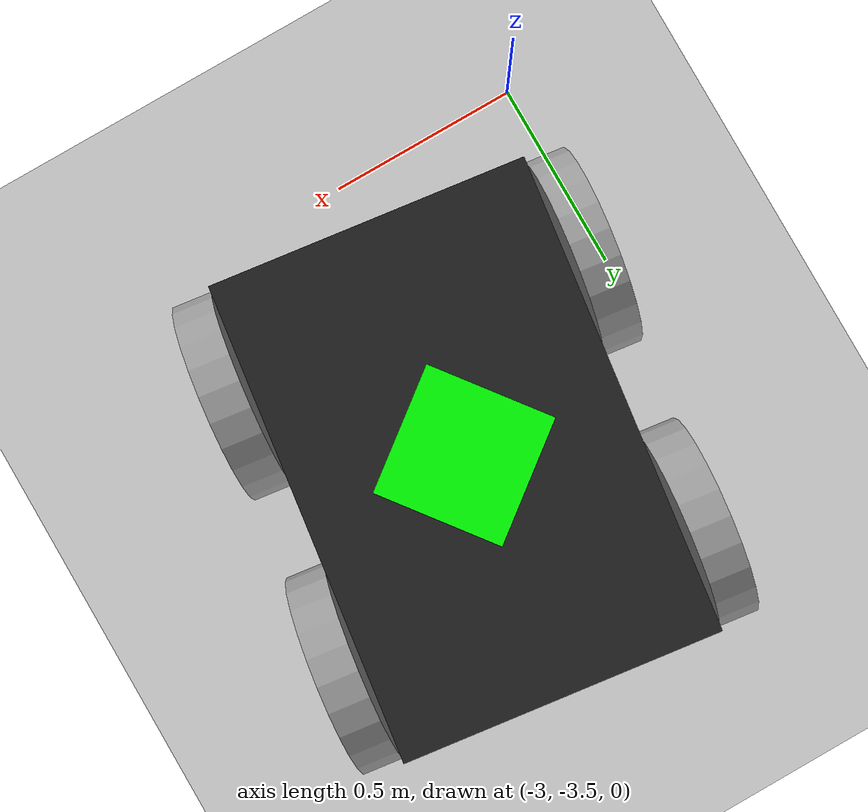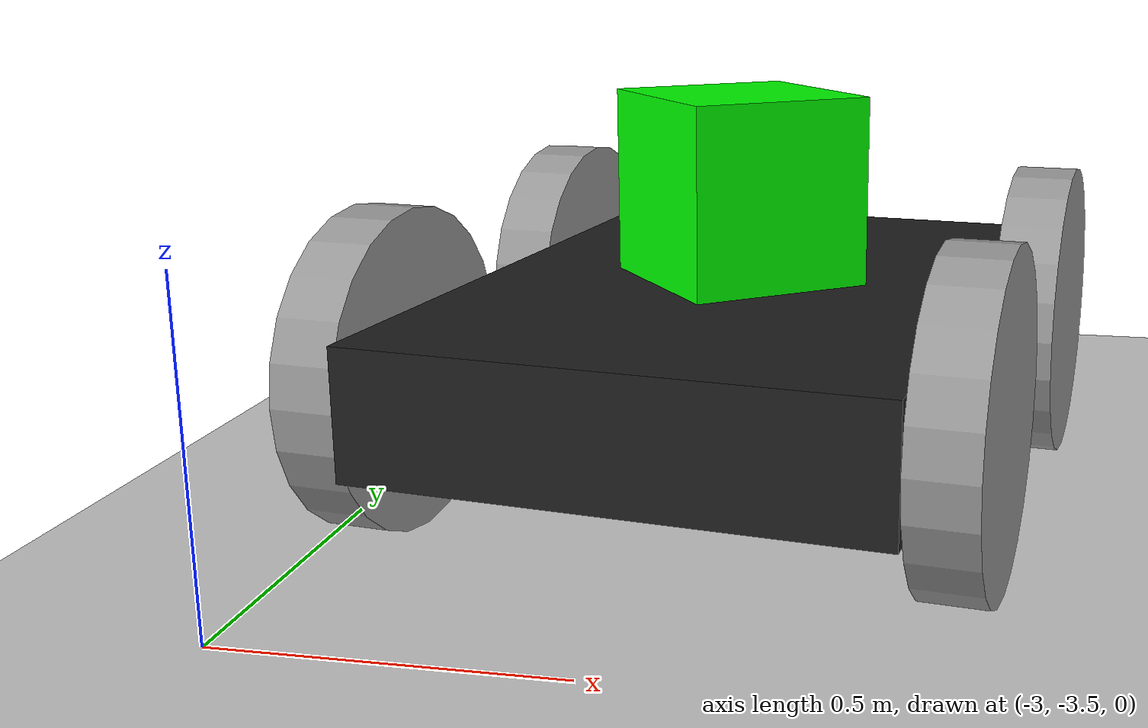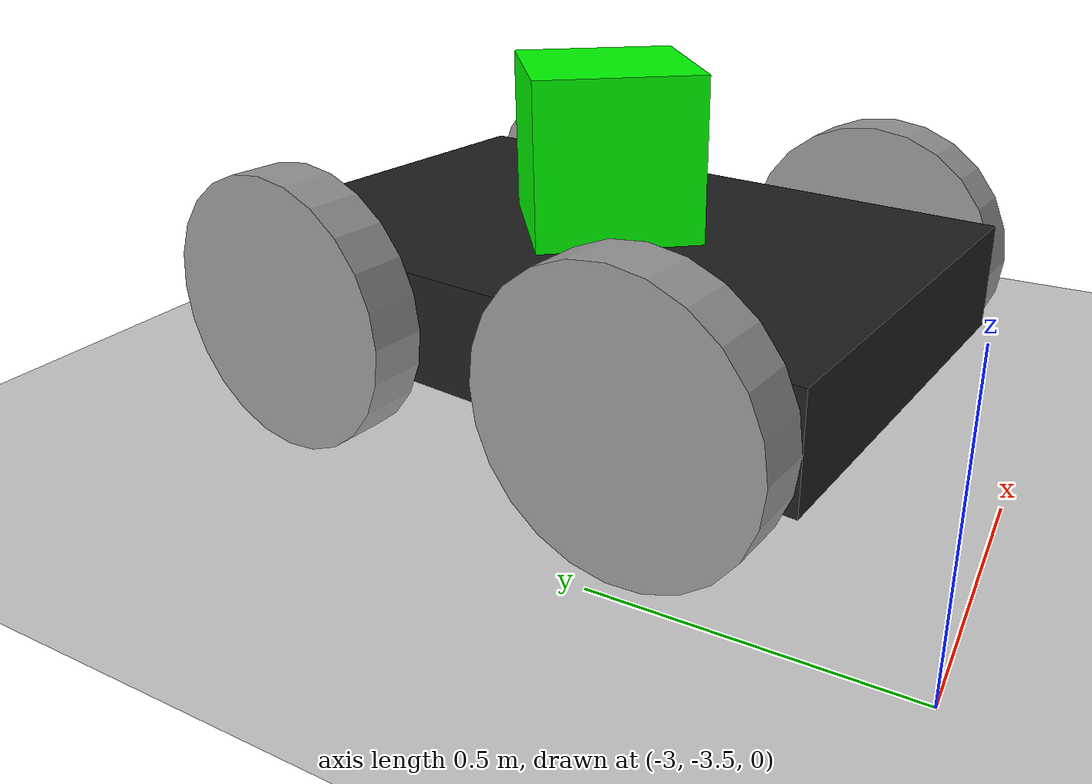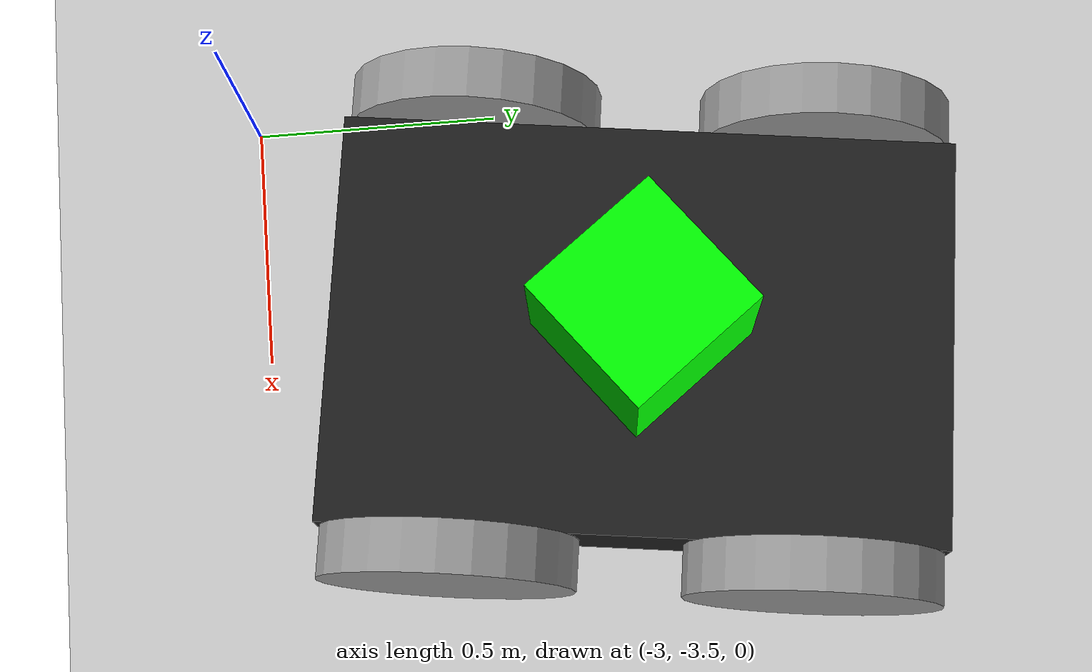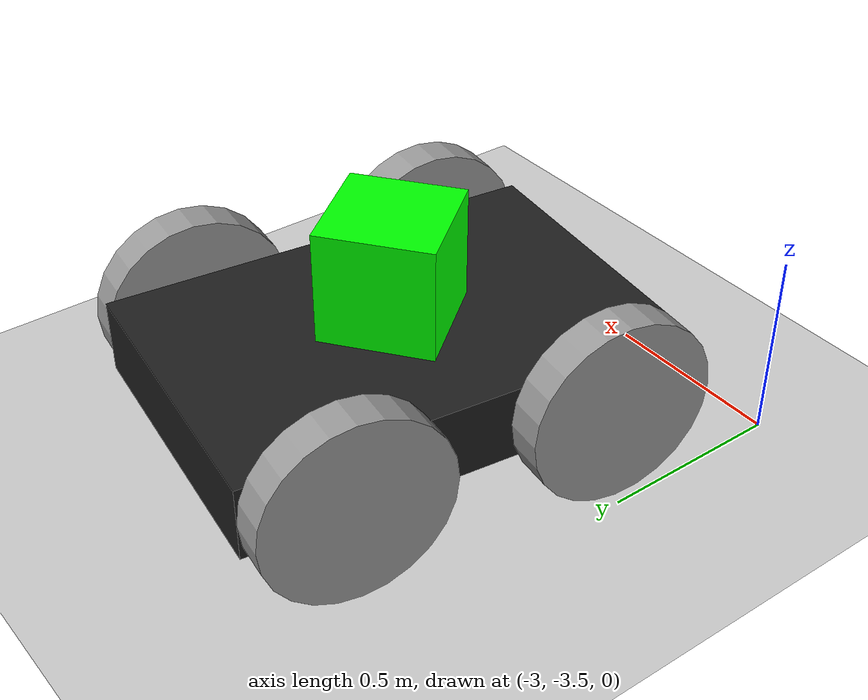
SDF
<sdf version="1.6">
 <world name="default">
  <model name="ground_plane">
   <static>1</static>
   <link name="link">
    <collision name="collision">
     <geometry><plane><normal>0 0 1</normal><size>100 100</size></plane></geometry>
     <surface>
      <contact><collide_bitmask>65535</collide_bitmask></contact>
      <friction><ode><mu>100</mu><mu2>50</mu2></ode></friction>
     </surface>
    </collision>
    <visual name="visual">
     <cast_shadows>0</cast_shadows>
     <geometry><plane><normal>0 0 1</normal><size>100 100</size></plane></geometry>
     <material>
      <script><uri>file://media/materials/scripts/gazebo.material</uri><name>Gazebo/Grey</name></script>
     </material>
    </visual>
   </link>
  </model>
  <model name="4WheeledRobot_clone">
   <link name="link_0">
    <pose>-0 -0 -0.041667 0 -0 0</pose>
    <inertial>
     <mass>1</mass>
     <inertia>
      <ixx>0.166667</ixx>
      <ixy>0</ixy>
      <ixz>0</ixz>
      <iyy>0.166667</iyy>
      <iyz>0</iyz>
      <izz>0.166667</izz>
     </inertia>
    </inertial>
    <visual name="visual">
     <geometry><box><size>1.2 0.8 0.2</size></box></geometry>
     <material>
      <lighting>1</lighting>
      <script><uri>file://media/materials/scripts/gazebo.material</uri><name>Gazebo/Black</name></script>
      <shader type="pixel"><normal_map>__default__</normal_map></shader>
      <ambient>1 0.1 0.1 1</ambient>
      <diffuse>0.7 0.7 0.7 1</diffuse>
      <specular>0.01 0.01 0.01 1</specular>
      <emissive>0 0 0 1</emissive>
     </material>
    </visual>
    <collision name="collision">
     <geometry><box><size>1.2 0.8 0.2</size></box></geometry>
     <surface>
      <friction>
       <ode><mu>1</mu><mu2>1</mu2><fdir1>0 0 0</fdir1><slip1>0</slip1><slip2>0</slip2></ode>
       <torsional>
        <coefficient>1</coefficient>
        <patch_radius>0</patch_radius>
        <surface_radius>0</surface_radius>
        <use_patch_radius>1</use_patch_radius>
        <ode><slip>0</slip></ode>
       </torsional>
      </friction>
      <bounce><restitution_coefficient>0</restitution_coefficient><threshold>1e+06</threshold></bounce>
      <contact>
       <collide_without_contact>0</collide_without_contact>
       <collide_without_contact_bitmask>1</collide_without_contact_bitmask>
       <collide_bitmask>1</collide_bitmask>
       <ode>
        <soft_cfm>0</soft_cfm>
        <soft_erp>0.2</soft_erp>
        <kp>1e+13</kp>
        <kd>1</kd>
        <max_vel>0.01</max_vel>
        <min_depth>0</min_depth>
       </ode>
       <bullet>
        <split_impulse>1</split_impulse>
        <split_impulse_penetration_threshold>-0.01</split_impulse_penetration_threshold>
        <soft_cfm>0</soft_cfm>
        <soft_erp>0.2</soft_erp>
        <kp>1e+13</kp>
        <kd>1</kd>
       </bullet>
      </contact>
     </surface>
    </collision>
   </link>
   <link name="link_1_clone_0">
    <pose>-0.35 0.450001 -0.041667 1.5708 -0 0</pose>
    <inertial>
     <mass>1</mass>
     <inertia><ixx>0.145833</ixx><ixy>0</ixy><ixz>0</ixz><iyy>0.145833</iyy><iyz>0</iyz><izz>0.125</izz></inertia>
    </inertial>
    <visual name="visual">
     <geometry><cylinder><radius>0.25</radius><length>0.1</length></cylinder></geometry>
     <material>
      <lighting>1</lighting>
      <script><uri>file://media/materials/scripts/gazebo.material</uri><name>Gazebo/Grey</name></script>
      <shader type="pixel"><normal_map>__default__</normal_map></shader>
      <ambient>1 1 1 0</ambient>
      <diffuse>0.7 0.7 0.7 1</diffuse>
      <specular>0.01 0.01 0.01 1</specular>
      <emissive>0 0 0 1</emissive>
     </material>
    </visual>
    <collision name="collision">
     <geometry><cylinder><radius>0.25</radius><length>0.1</length></cylinder></geometry>
     <surface>
      <friction>
       <ode><mu>1</mu><mu2>1</mu2><fdir1>0 0 0</fdir1><slip1>0</slip1><slip2>0</slip2></ode>
       <torsional>
        <coefficient>1</coefficient>
        <patch_radius>0</patch_radius>
        <surface_radius>0</surface_radius>
        <use_patch_radius>1</use_patch_radius>
        <ode><slip>0</slip></ode>
       </torsional>
      </friction>
      <bounce><restitution_coefficient>0</restitution_coefficient><threshold>1e+06</threshold></bounce>
      <contact>
       <collide_without_contact>0</collide_without_contact>
       <collide_without_contact_bitmask>1</collide_without_contact_bitmask>
       <collide_bitmask>1</collide_bitmask>
       <ode>
        <soft_cfm>0</soft_cfm>
        <soft_erp>0.2</soft_erp>
        <kp>1e+13</kp>
        <kd>1</kd>
        <max_vel>0.01</max_vel>
        <min_depth>0</min_depth>
       </ode>
       <bullet>
        <split_impulse>1</split_impulse>
        <split_impulse_penetration_threshold>-0.01</split_impulse_penetration_threshold>
        <soft_cfm>0</soft_cfm>
        <soft_erp>0.2</soft_erp>
        <kp>1e+13</kp>
        <kd>1</kd>
       </bullet>
      </contact>
     </surface>
    </collision>
   </link>
   <link name="link_1_clone_0_clone">
    <pose>-0.35 -0.450001 -0.041667 1.5708 -0 0</pose>
    <inertial>
     <mass>1</mass>
     <inertia><ixx>0.145833</ixx><ixy>0</ixy><ixz>0</ixz><iyy>0.145833</iyy><iyz>0</iyz><izz>0.125</izz></inertia>
    </inertial>
    <visual name="visual">
     <geometry><cylinder><radius>0.25</radius><length>0.1</length></cylinder></geometry>
     <material>
      <lighting>1</lighting>
      <script><uri>file://media/materials/scripts/gazebo.material</uri><name>Gazebo/Grey</name></script>
      <shader type="pixel"><normal_map>__default__</normal_map></shader>
      <ambient>1 1 1 0</ambient>
      <diffuse>0.7 0.7 0.7 1</diffuse>
      <specular>0.01 0.01 0.01 1</specular>
      <emissive>0 0 0 1</emissive>
     </material>
    </visual>
    <collision name="collision">
     <geometry><cylinder><radius>0.25</radius><length>0.1</length></cylinder></geometry>
     <surface>
      <friction>
       <ode><mu>1</mu><mu2>1</mu2><fdir1>0 0 0</fdir1><slip1>0</slip1><slip2>0</slip2></ode>
       <torsional>
        <coefficient>1</coefficient>
        <patch_radius>0</patch_radius>
        <surface_radius>0</surface_radius>
        <use_patch_radius>1</use_patch_radius>
        <ode><slip>0</slip></ode>
       </torsional>
      </friction>
      <bounce><restitution_coefficient>0</restitution_coefficient><threshold>1e+06</threshold></bounce>
      <contact>
       <collide_without_contact>0</collide_without_contact>
       <collide_without_contact_bitmask>1</collide_without_contact_bitmask>
       <collide_bitmask>1</collide_bitmask>
       <ode>
        <soft_cfm>0</soft_cfm>
        <soft_erp>0.2</soft_erp>
        <kp>1e+13</kp>
        <kd>1</kd>
        <max_vel>0.01</max_vel>
        <min_depth>0</min_depth>
       </ode>
       <bullet>
        <split_impulse>1</split_impulse>
        <split_impulse_penetration_threshold>-0.01</split_impulse_penetration_threshold>
        <soft_cfm>0</soft_cfm>
        <soft_erp>0.2</soft_erp>
        <kp>1e+13</kp>
        <kd>1</kd>
       </bullet>
      </contact>
     </surface>
    </collision>
   </link>
   <link name="link_1_clone_0_clone_0">
    <pose>0.35 -0.450001 -0.041667 1.5708 -0 0</pose>
    <inertial>
     <mass>1</mass>
     <inertia><ixx>0.145833</ixx><ixy>0</ixy><ixz>0</ixz><iyy>0.145833</iyy><iyz>0</iyz><izz>0.125</izz></inertia>
    </inertial>
    <visual name="visual">
     <geometry><cylinder><radius>0.25</radius><length>0.1</length></cylinder></geometry>
     <material>
      <lighting>1</lighting>
      <script><uri>file://media/materials/scripts/gazebo.material</uri><name>Gazebo/Grey</name></script>
      <shader type="pixel"><normal_map>__default__</normal_map></shader>
      <ambient>1 1 1 0</ambient>
      <diffuse>0.7 0.7 0.7 1</diffuse>
      <specular>0.01 0.01 0.01 1</specular>
      <emissive>0 0 0 1</emissive>
     </material>
    </visual>
    <collision name="collision">
     <geometry><cylinder><radius>0.25</radius><length>0.1</length></cylinder></geometry>
     <surface>
      <friction>
       <ode><mu>1</mu><mu2>1</mu2><fdir1>0 0 0</fdir1><slip1>0</slip1><slip2>0</slip2></ode>
       <torsional>
        <coefficient>1</coefficient>
        <patch_radius>0</patch_radius>
        <surface_radius>0</surface_radius>
        <use_patch_radius>1</use_patch_radius>
        <ode><slip>0</slip></ode>
       </torsional>
      </friction>
      <bounce><restitution_coefficient>0</restitution_coefficient><threshold>1e+06</threshold></bounce>
      <contact>
       <collide_without_contact>0</collide_without_contact>
       <collide_without_contact_bitmask>1</collide_without_contact_bitmask>
       <collide_bitmask>1</collide_bitmask>
       <ode>
        <soft_cfm>0</soft_cfm>
        <soft_erp>0.2</soft_erp>
        <kp>1e+13</kp>
        <kd>1</kd>
        <max_vel>0.01</max_vel>
        <min_depth>0</min_depth>
       </ode>
       <bullet>
        <split_impulse>1</split_impulse>
        <split_impulse_penetration_threshold>-0.01</split_impulse_penetration_threshold>
        <soft_cfm>0</soft_cfm>
        <soft_erp>0.2</soft_erp>
        <kp>1e+13</kp>
        <kd>1</kd>
       </bullet>
      </contact>
     </surface>
    </collision>
   </link>
   <link name="link_1_clone_1">
    <pose>0.35 0.450001 -0.041667 1.5708 -0 0</pose>
    <inertial>
     <mass>1</mass>
     <inertia><ixx>0.145833</ixx><ixy>0</ixy><ixz>0</ixz><iyy>0.145833</iyy><iyz>0</iyz><izz>0.125</izz></inertia>
    </inertial>
    <visual name="visual">
     <geometry><cylinder><radius>0.25</radius><length>0.1</length></cylinder></geometry>
     <material>
      <lighting>1</lighting>
      <script><uri>file://media/materials/scripts/gazebo.material</uri><name>Gazebo/Grey</name></script>
      <shader type="pixel"><normal_map>__default__</normal_map></shader>
      <ambient>1 1 1 0</ambient>
      <diffuse>0.7 0.7 0.7 1</diffuse>
      <specular>0.01 0.01 0.01 1</specular>
      <emissive>0 0 0 1</emissive>
     </material>
    </visual>
    <collision name="collision">
     <geometry><cylinder><radius>0.25</radius><length>0.1</length></cylinder></geometry>
     <surface>
      <friction>
       <ode><mu>1</mu><mu2>1</mu2><fdir1>0 0 0</fdir1><slip1>0</slip1><slip2>0</slip2></ode>
       <torsional>
        <coefficient>1</coefficient>
        <patch_radius>0</patch_radius>
        <surface_radius>0</surface_radius>
        <use_patch_radius>1</use_patch_radius>
        <ode><slip>0</slip></ode>
       </torsional>
      </friction>
      <bounce><restitution_coefficient>0</restitution_coefficient><threshold>1e+06</threshold></bounce>
      <contact>
       <collide_without_contact>0</collide_without_contact>
       <collide_without_contact_bitmask>1</collide_without_contact_bitmask>
       <collide_bitmask>1</collide_bitmask>
       <ode>
        <soft_cfm>0</soft_cfm>
        <soft_erp>0.2</soft_erp>
        <kp>1e+13</kp>
        <kd>1</kd>
        <max_vel>0.01</max_vel>
        <min_depth>0</min_depth>
       </ode>
       <bullet>
        <split_impulse>1</split_impulse>
        <split_impulse_penetration_threshold>-0.01</split_impulse_penetration_threshold>
        <soft_cfm>0</soft_cfm>
        <soft_erp>0.2</soft_erp>
        <kp>1e+13</kp>
        <kd>1</kd>
       </bullet>
      </contact>
     </surface>
    </collision>
   </link>
   <link name="link_2">
    <pose>-0 -0 0.208333 0 -0 0.7854</pose>
    <inertial>
     <mass>1</mass>
     <inertia>
      <ixx>0.166667</ixx>
      <ixy>0</ixy>
      <ixz>0</ixz>
      <iyy>0.166667</iyy>
      <iyz>0</iyz>
      <izz>0.166667</izz>
     </inertia>
    </inertial>
    <visual name="visual">
     <geometry><box><size>0.3 0.3 0.3</size></box></geometry>
     <material>
      <lighting>1</lighting>
      <script><uri>file://media/materials/scripts/gazebo.material</uri><name>Gazebo/Grey</name></script>
      <shader type="pixel"><normal_map>__default__</normal_map></shader>
      <ambient>0 1 0 1</ambient>
      <diffuse>0.7 0.7 0.7 1</diffuse>
      <specular>0.01 0.01 0.01 1</specular>
      <emissive>0 0 0 1</emissive>
     </material>
    </visual>
    <collision name="collision">
     <geometry><box><size>0.3 0.3 0.3</size></box></geometry>
     <surface>
      <friction>
       <ode><mu>1</mu><mu2>1</mu2><fdir1>0 0 0</fdir1><slip1>0</slip1><slip2>0</slip2></ode>
       <torsional>
        <coefficient>1</coefficient>
        <patch_radius>0</patch_radius>
        <surface_radius>0</surface_radius>
        <use_patch_radius>1</use_patch_radius>
        <ode><slip>0</slip></ode>
       </torsional>
      </friction>
      <bounce><restitution_coefficient>0</restitution_coefficient><threshold>1e+06</threshold></bounce>
      <contact>
       <collide_without_contact>0</collide_without_contact>
       <collide_without_contact_bitmask>1</collide_without_contact_bitmask>
       <collide_bitmask>1</collide_bitmask>
       <ode>
        <soft_cfm>0</soft_cfm>
        <soft_erp>0.2</soft_erp>
        <kp>1e+13</kp>
        <kd>1</kd>
        <max_vel>0.01</max_vel>
        <min_depth>0</min_depth>
       </ode>
       <bullet>
        <split_impulse>1</split_impulse>
        <split_impulse_penetration_threshold>-0.01</split_impulse_penetration_threshold>
        <soft_cfm>0</soft_cfm>
        <soft_erp>0.2</soft_erp>
        <kp>1e+13</kp>
        <kd>1</kd>
       </bullet>
      </contact>
     </surface>
    </collision>
   </link>
   <joint name="link_0_JOINT_3" type="revolute">
    <parent>link_0</parent>
    <child>link_1_clone_0_clone_0</child>
    <axis>
     <xyz>0 0 1</xyz>
     <use_parent_model_frame>0</use_parent_model_frame>
     <limit>
      <lower>-1.79769e+308</lower>
      <upper>1.79769e+308</upper>
      <effort>-1</effort>
      <velocity>-1</velocity>
     </limit>
     <dynamics>
      <spring_reference>0</spring_reference>
      <spring_stiffness>0</spring_stiffness>
      <damping>0</damping>
     </dynamics>
    </axis>
    <physics>
     <ode><limit><cfm>0</cfm><erp>0.2</erp></limit><suspension><cfm>0</cfm><erp>0.2</erp></suspension></ode>
    </physics>
   </joint>
   <joint name="link_0_JOINT_4" type="revolute">
    <parent>link_0</parent>
    <child>link_1_clone_0_clone</child>
    <axis>
     <xyz>0 0 1</xyz>
     <use_parent_model_frame>0</use_parent_model_frame>
     <limit>
      <lower>-1.79769e+308</lower>
      <upper>1.79769e+308</upper>
      <effort>-1</effort>
      <velocity>-1</velocity>
     </limit>
     <dynamics>
      <spring_reference>0</spring_reference>
      <spring_stiffness>0</spring_stiffness>
      <damping>0</damping>
     </dynamics>
    </axis>
    <physics>
     <ode><limit><cfm>0</cfm><erp>0.2</erp></limit><suspension><cfm>0</cfm><erp>0.2</erp></suspension></ode>
    </physics>
   </joint>
   <joint name="link_0_JOINT_5" type="revolute">
    <parent>link_0</parent>
    <child>link_1_clone_0</child>
    <axis>
     <xyz>0 0 1</xyz>
     <use_parent_model_frame>0</use_parent_model_frame>
     <limit>
      <lower>-1.79769e+308</lower>
      <upper>1.79769e+308</upper>
      <effort>-1</effort>
      <velocity>-1</velocity>
     </limit>
     <dynamics>
      <spring_reference>0</spring_reference>
      <spring_stiffness>0</spring_stiffness>
      <damping>0</damping>
     </dynamics>
    </axis>
    <physics>
     <ode><limit><cfm>0</cfm><erp>0.2</erp></limit><suspension><cfm>0</cfm><erp>0.2</erp></suspension></ode>
    </physics>
   </joint>
   <joint name="link_0_JOINT_6" type="revolute">
    <parent>link_0</parent>
    <child>link_1_clone_1</child>
    <axis>
     <xyz>0 0 1</xyz>
     <use_parent_model_frame>0</use_parent_model_frame>
     <limit>
      <lower>-1.79769e+308</lower>
      <upper>1.79769e+308</upper>
      <effort>-1</effort>
      <velocity>-1</velocity>
     </limit>
     <dynamics>
      <spring_reference>0</spring_reference>
      <spring_stiffness>0</spring_stiffness>
      <damping>0</damping>
     </dynamics>
    </axis>
    <physics>
     <ode><limit><cfm>0</cfm><erp>0.2</erp></limit><suspension><cfm>0</cfm><erp>0.2</erp></suspension></ode>
    </physics>
   </joint>
   <joint name="link_0_JOINT_7" type="fixed">
    <parent>link_0</parent>
    <child>link_2</child>
    <physics>
     <ode><limit><cfm>0</cfm><erp>0.2</erp></limit><suspension><cfm>0</cfm><erp>0.2</erp></suspension></ode>
    </physics>
   </joint>
   <static>0</static>
   <pose>-2.43153 -2.73646 0.291666 -2e-06 -0 -1.70096</pose>
  </model>
 </world>
</sdf>
